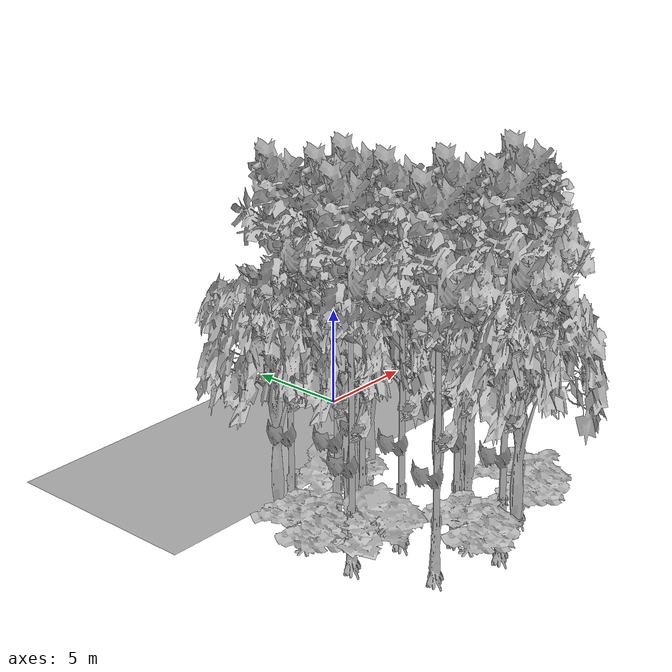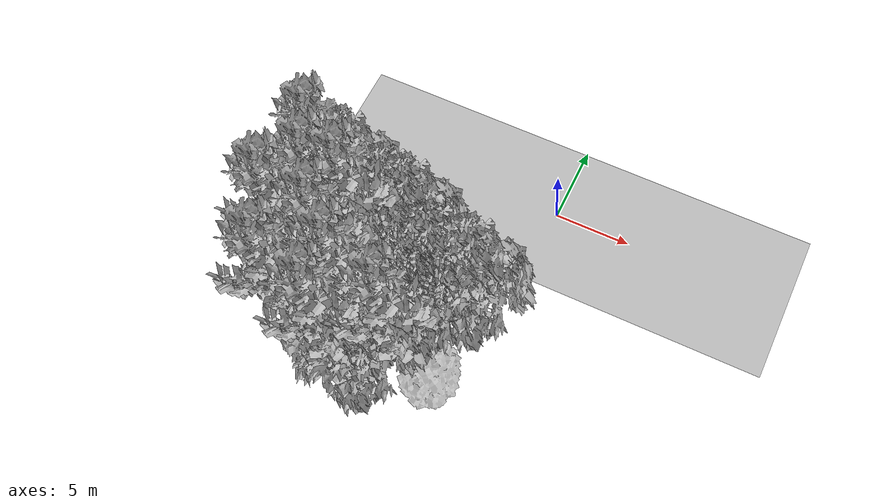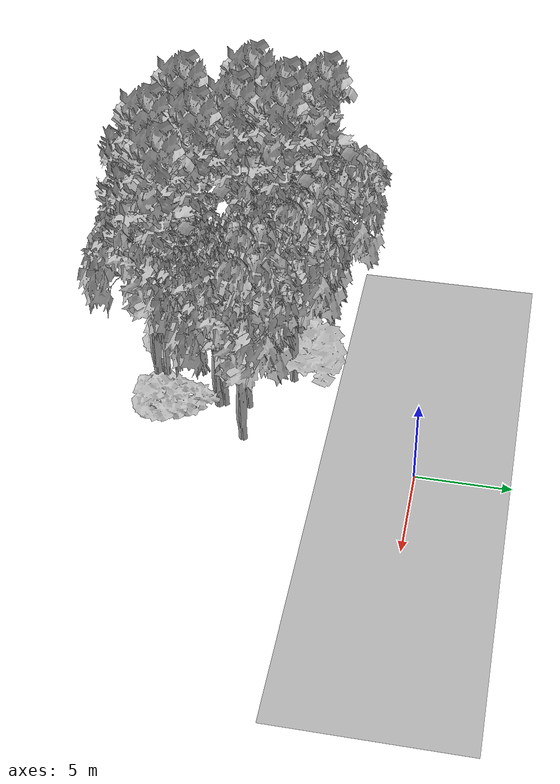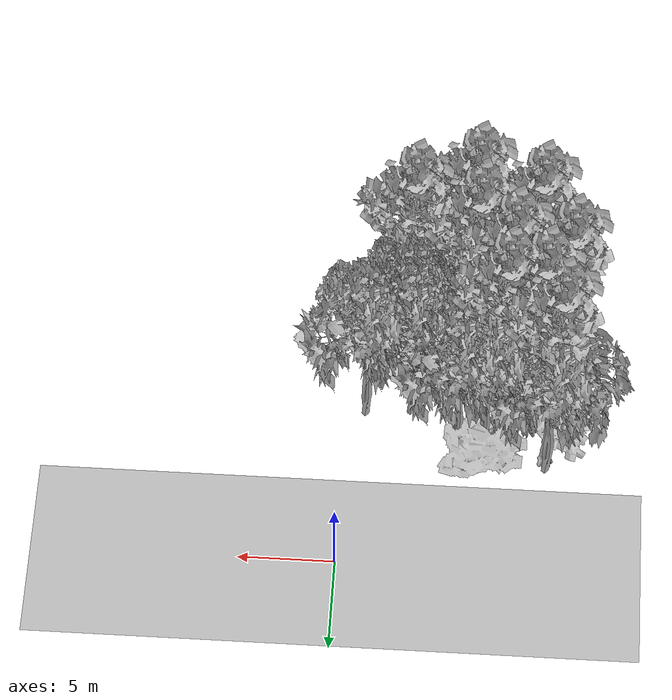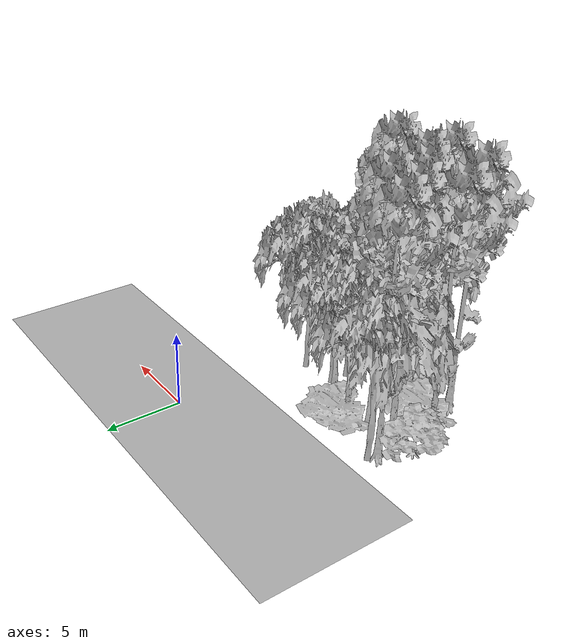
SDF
<sdf version="1.7">
 <world name="default">
  <model name="ground_plane">
   <static>1</static>
   <link name="link">
    <collision name="collision">
     <pose>-50 0 0 0 -0 0</pose>
     <geometry><plane><normal>0 0 1</normal><size>100 100</size></plane></geometry>
     <surface><contact><ode><min_depth>0.01</min_depth><max_vel>0</max_vel></ode></contact></surface>
    </collision>
    <visual name="grass">
     <cast_shadows>0</cast_shadows>
     <geometry>
      <mesh>
       <scale>0.5814285714285714 0.18142857142857144 0.1</scale>
       <uri>file://grass_plane/meshes/grass_plane.dae</uri>
      </mesh>
     </geometry>
    </visual>
   </link>
  </model>
  <model name="Tree 7">
   <static>1</static>
   <pose>-3.4012049708011887 -10.99969805420975 0 1.57079 -0 0</pose>
   <link name="link">
    <collision name="collision">
     <geometry><mesh><scale>3.5 5 3.5</scale><uri>model://tree_2/meshes/tree_2.obj</uri></mesh></geometry>
    </collision>
    <visual name="visual">
     <geometry><mesh><scale>3.5 5 3.5</scale><uri>model://tree_2/meshes/tree_2.obj</uri></mesh></geometry>
    </visual>
   </link>
  </model>
  <model name="Tree 9">
   <static>1</static>
   <pose>-9.78000082832689 -8.855958627671 0 1.57079 -0 0</pose>
   <link name="link">
    <collision name="collision">
     <geometry><mesh><scale>3.5 5 3.5</scale><uri>model://tree_9/meshes/tree_9.obj</uri></mesh></geometry>
    </collision>
    <visual name="visual">
     <geometry><mesh><scale>3.5 5 3.5</scale><uri>model://tree_9/meshes/tree_9.obj</uri></mesh></geometry>
    </visual>
   </link>
  </model>
  <model name="Tree 37">
   <static>1</static>
   <pose>-10.63687588219755 -6.996140885234148 0 1.57079 -0 0</pose>
   <link name="link">
    <collision name="collision">
     <geometry><mesh><scale>3.5 5 3.5</scale><uri>model://tree_9/meshes/tree_9.obj</uri></mesh></geometry>
    </collision>
    <visual name="visual">
     <geometry><mesh><scale>3.5 5 3.5</scale><uri>model://tree_9/meshes/tree_9.obj</uri></mesh></geometry>
    </visual>
   </link>
  </model>
  <model name="Tree 42">
   <static>1</static>
   <pose>-2.4022848912385015 -13.264868014995365 0 1.57079 -0 0</pose>
   <link name="link">
    <collision name="collision">
     <geometry><mesh><scale>4 2.5 4</scale><uri>model://tree_1/meshes/tree_1.obj</uri></mesh></geometry>
    </collision>
    <visual name="visual">
     <geometry><mesh><scale>4 2.5 4</scale><uri>model://tree_1/meshes/tree_1.obj</uri></mesh></geometry>
    </visual>
   </link>
  </model>
  <model name="Tree 54">
   <static>1</static>
   <pose>-7.252651108749568 -6.7189353691586575 0 1.57079 -0 0</pose>
   <link name="link">
    <collision name="collision">
     <geometry><mesh><scale>3 2 3</scale><uri>model://tree_3/meshes/tree_3.obj</uri></mesh></geometry>
    </collision>
    <visual name="visual">
     <geometry><mesh><scale>3 2 3</scale><uri>model://tree_3/meshes/tree_3.obj</uri></mesh></geometry>
    </visual>
   </link>
  </model>
  <model name="Tree 97">
   <static>1</static>
   <pose>-11.054781495378386 -10.779453316111542 0 1.57079 -0 0</pose>
   <link name="link">
    <collision name="collision">
     <geometry><mesh><scale>3.5 5 3.5</scale><uri>model://tree_9/meshes/tree_9.obj</uri></mesh></geometry>
    </collision>
    <visual name="visual">
     <geometry><mesh><scale>3.5 5 3.5</scale><uri>model://tree_9/meshes/tree_9.obj</uri></mesh></geometry>
    </visual>
   </link>
  </model>
  <model name="Tree 104">
   <static>1</static>
   <pose>-3.551729584530669 -10.695913549244814 0 1.57079 -0 0</pose>
   <link name="link">
    <collision name="collision">
     <geometry><mesh><scale>3.5 5 3.5</scale><uri>model://tree_2/meshes/tree_2.obj</uri></mesh></geometry>
    </collision>
    <visual name="visual">
     <geometry><mesh><scale>3.5 5 3.5</scale><uri>model://tree_2/meshes/tree_2.obj</uri></mesh></geometry>
    </visual>
   </link>
  </model>
  <model name="Tree 108">
   <static>1</static>
   <pose>-1.211522231776783 -9.199188831077318 0 1.57079 -0 0</pose>
   <link name="link">
    <collision name="collision">
     <geometry><mesh><scale>3.5 5 3.5</scale><uri>model://tree_2/meshes/tree_2.obj</uri></mesh></geometry>
    </collision>
    <visual name="visual">
     <geometry><mesh><scale>3.5 5 3.5</scale><uri>model://tree_2/meshes/tree_2.obj</uri></mesh></geometry>
    </visual>
   </link>
  </model>
  <model name="Tree 149">
   <static>1</static>
   <pose>-3.5871822514472598 -9.418296986089775 0 1.57079 -0 0</pose>
   <link name="link">
    <collision name="collision">
     <geometry><mesh><scale>3.5 5 3.5</scale><uri>model://tree_2/meshes/tree_2.obj</uri></mesh></geometry>
    </collision>
    <visual name="visual">
     <geometry><mesh><scale>3.5 5 3.5</scale><uri>model://tree_2/meshes/tree_2.obj</uri></mesh></geometry>
    </visual>
   </link>
  </model>
  <model name="Tree 176">
   <static>1</static>
   <pose>-3.129153629576585 -13.628378443871592 0 1.57079 -0 0</pose>
   <link name="link">
    <collision name="collision">
     <geometry><mesh><scale>3.5 5 3.5</scale><uri>model://tree_9/meshes/tree_9.obj</uri></mesh></geometry>
    </collision>
    <visual name="visual">
     <geometry><mesh><scale>3.5 5 3.5</scale><uri>model://tree_9/meshes/tree_9.obj</uri></mesh></geometry>
    </visual>
   </link>
  </model>
  <model name="Tree 182">
   <static>1</static>
   <pose>-6.400215497979531 -12.655017682371113 0 1.57079 -0 0</pose>
   <link name="link">
    <collision name="collision">
     <geometry><mesh><scale>3.5 5 3.5</scale><uri>model://tree_9/meshes/tree_9.obj</uri></mesh></geometry>
    </collision>
    <visual name="visual">
     <geometry><mesh><scale>3.5 5 3.5</scale><uri>model://tree_9/meshes/tree_9.obj</uri></mesh></geometry>
    </visual>
   </link>
  </model>
  <model name="Tree 202">
   <static>1</static>
   <pose>-8.180034159898256 -11.074881698176661 0 1.57079 -0 0</pose>
   <link name="link">
    <collision name="collision">
     <geometry><mesh><scale>3.5 5 3.5</scale><uri>model://tree_9/meshes/tree_9.obj</uri></mesh></geometry>
    </collision>
    <visual name="visual">
     <geometry><mesh><scale>3.5 5 3.5</scale><uri>model://tree_9/meshes/tree_9.obj</uri></mesh></geometry>
    </visual>
   </link>
  </model>
  <model name="Tree 231">
   <static>1</static>
   <pose>-6.235334917758614 -14.93435672805424 0 1.57079 -0 0</pose>
   <link name="link">
    <collision name="collision">
     <geometry><mesh><scale>3.5 5 3.5</scale><uri>model://tree_9/meshes/tree_9.obj</uri></mesh></geometry>
    </collision>
    <visual name="visual">
     <geometry><mesh><scale>3.5 5 3.5</scale><uri>model://tree_9/meshes/tree_9.obj</uri></mesh></geometry>
    </visual>
   </link>
  </model>
  <model name="Tree 280">
   <static>1</static>
   <pose>-7.437284894084669 -7.344471199688504 0 1.57079 -0 0</pose>
   <link name="link">
    <collision name="collision">
     <geometry><mesh><scale>3.5 5 3.5</scale><uri>model://tree_2/meshes/tree_2.obj</uri></mesh></geometry>
    </collision>
    <visual name="visual">
     <geometry><mesh><scale>3.5 5 3.5</scale><uri>model://tree_2/meshes/tree_2.obj</uri></mesh></geometry>
    </visual>
   </link>
  </model>
  <model name="Tree 305">
   <static>1</static>
   <pose>-11.724985828319767 -8.722291447414747 0 1.57079 -0 0</pose>
   <link name="link">
    <collision name="collision">
     <geometry><mesh><scale>4 2.5 4</scale><uri>model://tree_1/meshes/tree_1.obj</uri></mesh></geometry>
    </collision>
    <visual name="visual">
     <geometry><mesh><scale>4 2.5 4</scale><uri>model://tree_1/meshes/tree_1.obj</uri></mesh></geometry>
    </visual>
   </link>
  </model>
  <model name="Tree 346">
   <static>1</static>
   <pose>-7.172970705565035 -13.987740080322707 0 1.57079 -0 0</pose>
   <link name="link">
    <collision name="collision">
     <geometry><mesh><scale>4 2.5 4</scale><uri>model://tree_1/meshes/tree_1.obj</uri></mesh></geometry>
    </collision>
    <visual name="visual">
     <geometry><mesh><scale>4 2.5 4</scale><uri>model://tree_1/meshes/tree_1.obj</uri></mesh></geometry>
    </visual>
   </link>
  </model>
  <model name="Tree 366">
   <static>1</static>
   <pose>-9.466547976997326 -13.955081430857875 0 1.57079 -0 0</pose>
   <link name="link">
    <collision name="collision">
     <geometry><mesh><scale>3.5 5 3.5</scale><uri>model://tree_9/meshes/tree_9.obj</uri></mesh></geometry>
    </collision>
    <visual name="visual">
     <geometry><mesh><scale>3.5 5 3.5</scale><uri>model://tree_9/meshes/tree_9.obj</uri></mesh></geometry>
    </visual>
   </link>
  </model>
  <model name="Tree 377">
   <static>1</static>
   <pose>-7.975047526518807 -8.704001980454134 0 1.57079 -0 0</pose>
   <link name="link">
    <collision name="collision">
     <geometry><mesh><scale>3.5 5 3.5</scale><uri>model://tree_9/meshes/tree_9.obj</uri></mesh></geometry>
    </collision>
    <visual name="visual">
     <geometry><mesh><scale>3.5 5 3.5</scale><uri>model://tree_9/meshes/tree_9.obj</uri></mesh></geometry>
    </visual>
   </link>
  </model>
  <model name="Tree 392">
   <static>1</static>
   <pose>-5.054088762843563 -14.788290938893017 0 1.57079 -0 0</pose>
   <link name="link">
    <collision name="collision">
     <geometry><mesh><scale>3.5 5 3.5</scale><uri>model://tree_2/meshes/tree_2.obj</uri></mesh></geometry>
    </collision>
    <visual name="visual">
     <geometry><mesh><scale>3.5 5 3.5</scale><uri>model://tree_2/meshes/tree_2.obj</uri></mesh></geometry>
    </visual>
   </link>
  </model>
  <model name="Tree 395">
   <static>1</static>
   <pose>-6.042762884640901 -7.430134036230166 0 1.57079 -0 0</pose>
   <link name="link">
    <collision name="collision">
     <geometry><mesh><scale>3.5 5 3.5</scale><uri>model://tree_2/meshes/tree_2.obj</uri></mesh></geometry>
    </collision>
    <visual name="visual">
     <geometry><mesh><scale>3.5 5 3.5</scale><uri>model://tree_2/meshes/tree_2.obj</uri></mesh></geometry>
    </visual>
   </link>
  </model>
  <model name="Tree 465">
   <static>1</static>
   <pose>-9.80259910310567 -11.042904635929462 0 1.57079 -0 0</pose>
   <link name="link">
    <collision name="collision">
     <geometry><mesh><scale>3 2 3</scale><uri>model://tree_3/meshes/tree_3.obj</uri></mesh></geometry>
    </collision>
    <visual name="visual">
     <geometry><mesh><scale>3 2 3</scale><uri>model://tree_3/meshes/tree_3.obj</uri></mesh></geometry>
    </visual>
   </link>
  </model>
  <model name="Tree 478">
   <static>1</static>
   <pose>-10.755598974817751 -6.2123389648264595 0 1.57079 -0 0</pose>
   <link name="link">
    <collision name="collision">
     <geometry><mesh><scale>3.5 5 3.5</scale><uri>model://tree_2/meshes/tree_2.obj</uri></mesh></geometry>
    </collision>
    <visual name="visual">
     <geometry><mesh><scale>3.5 5 3.5</scale><uri>model://tree_2/meshes/tree_2.obj</uri></mesh></geometry>
    </visual>
   </link>
  </model>
  <model name="Tree 495">
   <static>1</static>
   <pose>-8.516649307742853 -8.576723863880943 0 1.57079 -0 0</pose>
   <link name="link">
    <collision name="collision">
     <geometry><mesh><scale>3.5 5 3.5</scale><uri>model://tree_2/meshes/tree_2.obj</uri></mesh></geometry>
    </collision>
    <visual name="visual">
     <geometry><mesh><scale>3.5 5 3.5</scale><uri>model://tree_2/meshes/tree_2.obj</uri></mesh></geometry>
    </visual>
   </link>
  </model>
 </world>
</sdf>
